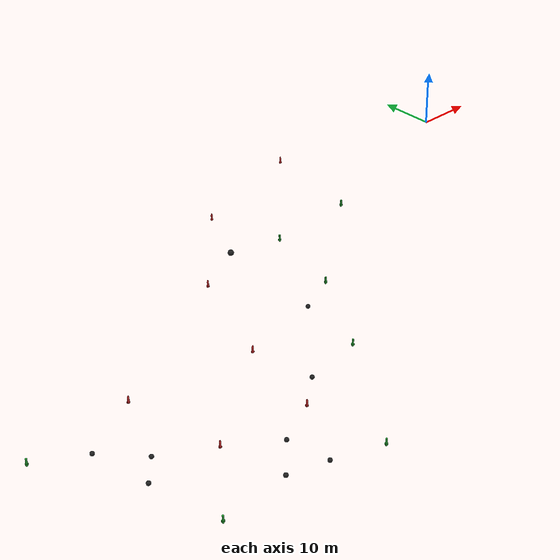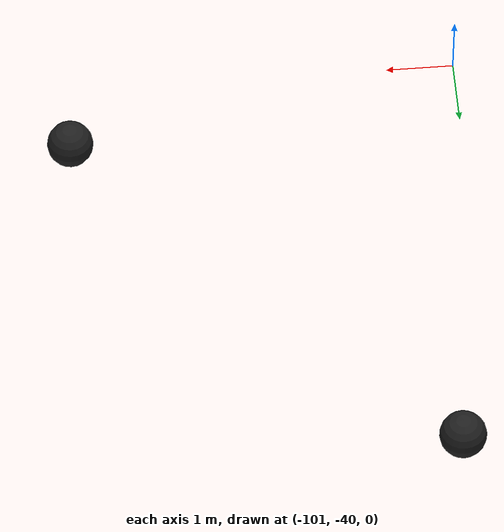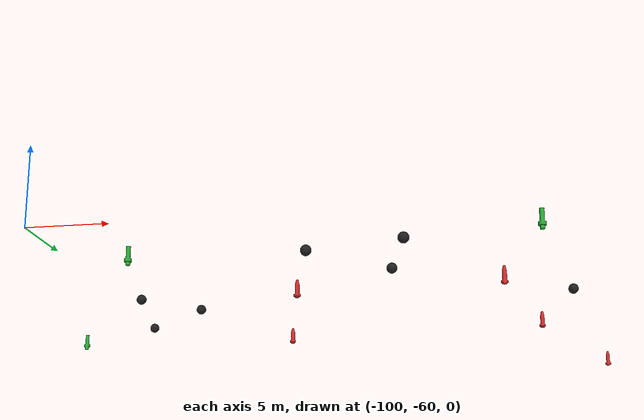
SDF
<?xml version="1.0"?>
<!-- Prototype of the VRX navigation task -->
<sdf version="1.6">
  <model name="navigation_task">
      <!-- Start -->
      <!-- Starboard_border -->
      <include>
        <name>red_bound_0</name>
        <pose>-29.8874 7.80274 0 0 -0 0</pose>
        <uri>model://surmark950410</uri>
      </include>

      <include>
        <name>red_bound_1</name>
        <pose>-51.4227 1.0515 0 0 -0 0</pose>
        <uri>model://surmark950410</uri>
      </include>

      <include>
        <name>red_bound_2</name>
        <pose>-64.574 -13.7242 0 0 -0 0</pose>
        <uri>model://surmark950410</uri>
      </include>

      <include>
        <name>red_bound_3</name>
        <pose>-70.5798 -30.9289 0 0 -0 0</pose>
        <uri>model://surmark950410</uri>
      </include>

      <include>
        <name>red_bound_4</name>
        <pose>-73.2084 -44.9953 0 0 -0 0</pose>
        <uri>model://surmark950410</uri>
      </include>

      <include>
        <name>red_bound_5</name>
        <pose>-87.3051 -43.4804 0 0 -0 0</pose>
        <uri>model://surmark950410</uri>
      </include>

      <include>
        <name>red_bound_6</name>
        <pose>-90.539 -28.0283 0 0 -0 0</pose>
        <uri>model://surmark950410</uri>
      </include>

      <!-- Port_border -->
      <include>
        <name>green_bound_0</name>
        <pose>-32.2914 -10.0761 -0.2 0 -0 0</pose>
        <uri>model://surmark950400</uri>
      </include>

      <include>
        <name>green_bound_1</name>
        <pose>-47.3915 -11.2422 -0.2 0 -0 0</pose>
        <uri>model://surmark950400</uri>
      </include>

      <include>
        <name>green_bound_2</name>
        <pose>-50.4509 -25.1164 -0.2 0 -0 0</pose>
        <uri>model://surmark950400</uri>
      </include>

      <include>
        <name>green_bound_3</name>
        <pose>-58.7734 -39.351 -0.2 0 -0 0</pose>
        <uri>model://surmark950400</uri>
      </include>

      <include>
        <name>green_bound_4</name>
        <pose>-70.9557 -57.7238 -0.2 0 -0 0</pose>
        <uri>model://surmark950400</uri>
      </include>

      <include>
        <name>green_bound_5</name>
        <pose>-95.8278 -54.0979 -0.2 0 -0 0</pose>
        <uri>model://surmark950400</uri>
      </include>

      <include>
        <name>green_bound_6</name>
        <pose>-107.643 -29.1729 -0.2 0 -0 0</pose>
        <uri>model://surmark950400</uri>
      </include>

      <!-- Obstacles -->

      <include>
        <name>obstacle_1</name>
        <pose>-57.283 -28.3719 -0.2 0 -0 0</pose>
        <uri>model://polyform_a5</uri>
      </include>

      <include>
        <name>obstacle_2</name>
        <pose>-68.6471 -41.2087 -0.2 0 -0 0</pose>
        <uri>model://polyform_a5</uri>
      </include>

      <include>
        <name>obstacle_3</name>
        <pose>-80.2333 -48.5559 -0.2 0 -0 0</pose>
        <uri>model://polyform_a5</uri>
      </include>

      <include>
        <name>obstacle_4</name>
        <pose>-78.842 -55.2626 -0.2 0 -0 0</pose>
        <uri>model://polyform_a5</uri>
      </include>

      <include>
        <name>obstacle_5</name>
        <pose>-84.9105 -53.4974 -0.2 0 -0 0</pose>
        <uri>model://polyform_a5</uri>
      </include>

      <include>
        <name>obstacle_6</name>
        <pose>-98.5759 -42.8883 -0.2 0 -0 0</pose>
        <uri>model://polyform_a5</uri>
      </include>

      <include>
        <name>obstacle_7</name>
        <pose>-95.2334 -39.1624 -0.2 0 -0 0</pose>
        <uri>model://polyform_a5</uri>
      </include>

      <include>
        <name>obstacle_8</name>
        <pose>-100.506 -33.524 -0.2 0 -0 0</pose>
        <uri>model://polyform_a5</uri>
      </include>

      <include>
        <name>obstacle_9</name>
        <pose>-56.0734 -9.21053 -0.2 0 -0 0</pose>
        <uri>model://polyform_a7</uri>
      </include>

  </model>
</sdf>

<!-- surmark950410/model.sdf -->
<sdf version="1.6">
  <model name="surmark950410">
    <link name="link">
      <inertial>
        <pose>0 0 -2 0 0 0</pose>
        <!-- Mass determined based on buoyancy geometry so object
             floats at mid-point of sphere -->
        <mass>25</mass>
        <!-- Mark only - based on cylinder -->
        <inertia>
          <ixx>1.0</ixx>
          <ixy>0</ixy>
          <ixz>0</ixz>
          <iyy>1.0</iyy>
          <iyz>0</iyz>
          <izz>0.1</izz>
        </inertia>
      </inertial>
      <collision name="collision_inner">
        <pose>0 0 -0.01 0 0 0</pose>
        <geometry>
          <cylinder>
            <radius>0.15</radius>
            <length>1.26</length>
          </cylinder>
        </geometry>
      </collision>
      <collision name="collision_outer">
        <pose>0 0 -0.48 0 0 0</pose>
        <geometry>
          <cylinder>
            <radius>0.24</radius>
            <length>0.15</length>
          </cylinder>
        </geometry>
      </collision>
      <visual name="visual">
        <geometry>
	        <mesh><uri>model://surmark950410/mesh/surmark950410.dae</uri></mesh>
        </geometry>
        <material>
          <script>
            <uri>model://surmark950410/materials/scripts/surmark950410.material</uri>
            <name>surmark950410/Red</name>
          </script>
        </material>
      </visual>
    </link>

    <plugin name="BuoyancyPlugin" filename="libbuoyancy_gazebo_plugin.so">
      <wave_model>ocean_waves</wave_model>
      <fluid_density>1000</fluid_density>
      <fluid_level>0.0</fluid_level>
      <linear_drag>25.0</linear_drag>
      <angular_drag>2.0</angular_drag>
      <buoyancy name="buoyancy_sphere">
        <link_name>link</link_name>
        <pose>0 0 -0.48 0 0 0</pose>
        <geometry>
          <sphere>
            <radius>0.23</radius>
          </sphere>
        </geometry>
      </buoyancy>
    </plugin>

  </model>
</sdf>

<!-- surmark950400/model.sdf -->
<sdf version="1.6">
  <model name="surmark950400">
    <link name="link">
      <inertial>
        <pose>0 0 -2 0 0 0</pose>
        <!-- Mass determined based on buoyancy geometry so object
             floats at mid-point of sphere -->
        <mass>25</mass>
        <!-- Mark only - based on cylinder -->
        <inertia>
          <ixx>1.0</ixx>
          <ixy>0</ixy>
          <ixz>0</ixz>
          <iyy>1.0</iyy>
          <iyz>0</iyz>
          <izz>0.1</izz>
        </inertia>
      </inertial>
      <collision name="collision_inner">
        <pose>0 0 -0.02 0 0 0</pose>
        <geometry>
          <cylinder>
            <radius>0.15</radius>
            <length>1.18</length>
          </cylinder>
        </geometry>
      </collision>
      <collision name="collision_outer">
        <pose>0 0 -0.31 0 0 0</pose>
        <geometry>
          <cylinder>
            <radius>0.24</radius>
            <length>0.2</length>
          </cylinder>
        </geometry>
      </collision>
      <visual name="visual">
        <geometry>
	        <mesh><uri>model://surmark950400/mesh/surmark950400.dae</uri></mesh>
        </geometry>
        <material>
          <script>
            <uri>model://surmark950400/materials/scripts/surmark950400.material</uri>
            <name>surmark950400/Green</name>
          </script>
        </material>
      </visual>
    </link>

    <plugin name="BuoyancyPlugin" filename="libbuoyancy_gazebo_plugin.so">
      <wave_model>ocean_waves</wave_model>
      <fluid_density>1000</fluid_density>
      <fluid_level>0.0</fluid_level>
      <linear_drag>25.0</linear_drag>
      <angular_drag>2.0</angular_drag>
      <buoyancy name="buoyancy_sphere">
        <link_name>link</link_name>
        <pose>0 0 -0.31 0 0 0</pose>
        <geometry>
          <sphere>
            <radius>0.23</radius>
          </sphere>
        </geometry>
      </buoyancy>
    </plugin>

  </model>
</sdf>

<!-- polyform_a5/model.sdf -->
<sdf version="1.6">
  <!-- Reference: https://www.polyformus.com/buoys/a-series -->
  <model name="polyform_a5">
    <static>false</static>
    <pose>0 0 0 0 0 0</pose>
    <link name="base_link">
      <inertial>
        <!-- Reference: https://www.sailrite.com/PDF/Polyform-Buoys-Fenders-Accessories.pdf, page 8 -->
        <mass>8.98</mass>
      </inertial>
      <visual name="visual">
        <geometry>
          <sphere><radius>0.343</radius></sphere>
        </geometry>
        <material>
          <script>
            <uri>file://media/materials/scripts/gazebo.material</uri>
            <name>Gazebo/Black</name>
          </script>
        </material>
      </visual>
      <collision name="collision">
        <geometry>
          <sphere><radius>0.343</radius></sphere>
        </geometry>
      </collision>
    </link>

    <plugin name="BuoyancyPlugin" filename="libbuoyancy_gazebo_plugin.so">
      <wave_model>ocean_waves</wave_model>
      <fluid_density>1000</fluid_density>
      <fluid_level>0.0</fluid_level>
      <linear_drag>20.0</linear_drag>
      <angular_drag>2.0</angular_drag>
      <buoyancy name="buoyancy">
        <link_name>base_link</link_name>
        <geometry>
          <sphere><radius>0.343</radius></sphere>
        </geometry>
      </buoyancy>
    </plugin>

  </model>
</sdf>

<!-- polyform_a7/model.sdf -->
<sdf version="1.6">
  <!-- Reference: https://www.polyformus.com/buoys/a-series -->
  <model name="polyform_a7">
    <static>false</static>
    <pose>0 0 0 0 0 0</pose>
    <link name="base_link">
      <inertial>
        <!-- Reference: https://www.sailrite.com/PDF/Polyform-Buoys-Fenders-Accessories.pdf, page 8 -->
        <mass>24.49</mass>
      </inertial>
      <visual name="visual">
        <geometry>
          <sphere><radius>0.4955</radius></sphere>
        </geometry>
        <material>
          <script>
            <uri>file://media/materials/scripts/gazebo.material</uri>
            <name>Gazebo/Black</name>
          </script>
        </material>
      </visual>
      <collision name="collision">
        <geometry>
          <sphere><radius>0.4955</radius></sphere>
        </geometry>
      </collision>
    </link>

    <plugin name="BuoyancyPlugin" filename="libbuoyancy_gazebo_plugin.so">
      <wave_model>ocean_waves</wave_model>
      <fluid_density>1000</fluid_density>
      <fluid_level>0.0</fluid_level>
      <linear_drag>20.0</linear_drag>
      <angular_drag>2.0</angular_drag>
      <buoyancy name="buoyancy">
        <link_name>base_link</link_name>
        <geometry>
          <sphere><radius>0.4955</radius></sphere>
        </geometry>
      </buoyancy>
    </plugin>

  </model>
</sdf>
